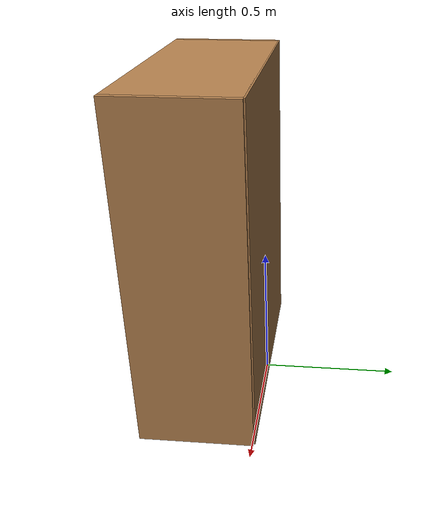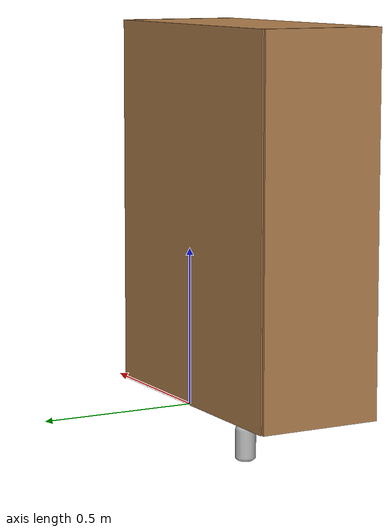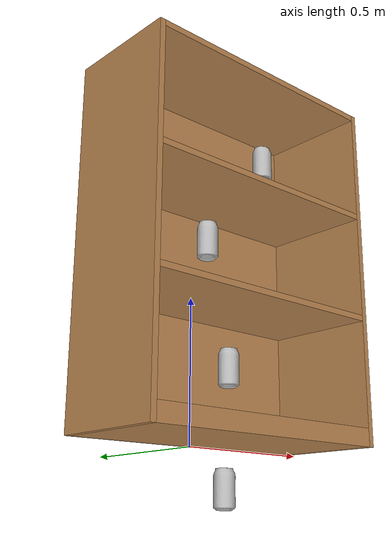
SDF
<?xml version='1.0'?>
<sdf version='1.6'>
  <model name='bookshelf_with_cans'>
    <model name='bookshelf'>
      <static>1</static>
      <link name='link'>
        <inertial>
          <mass>1</mass>
        </inertial>
        <collision name='back'>
          <pose frame=''>0 0.005 0.6 0 -0 0</pose>
          <geometry>
            <box>
              <size>0.9 0.01 1.2</size>
            </box>
          </geometry>
          <max_contacts>10</max_contacts>
          <surface>
            <contact>
              <ode/>
            </contact>
            <bounce/>
            <friction>
              <torsional>
                <ode/>
              </torsional>
              <ode/>
            </friction>
          </surface>
        </collision>
        <visual name='visual1'>
          <pose frame=''>0 0.005 0.6 0 -0 0</pose>
          <geometry>
            <box>
              <size>0.9 0.01 1.2</size>
            </box>
          </geometry>
          <material>
            <script>
              <uri>file://media/materials/scripts/gazebo.material</uri>
              <name>Gazebo/Wood</name>
            </script>
          </material>
        </visual>
        <collision name='left_side'>
          <pose frame=''>0.45 -0.195 0.6 0 -0 0</pose>
          <geometry>
            <box>
              <size>0.02 0.4 1.2</size>
            </box>
          </geometry>
          <max_contacts>10</max_contacts>
          <surface>
            <contact>
              <ode/>
            </contact>
            <bounce/>
            <friction>
              <torsional>
                <ode/>
              </torsional>
              <ode/>
            </friction>
          </surface>
        </collision>
        <visual name='visual2'>
          <pose frame=''>0.45 -0.195 0.6 0 -0 0</pose>
          <geometry>
            <box>
              <size>0.02 0.4 1.2</size>
            </box>
          </geometry>
          <material>
            <script>
              <uri>file://media/materials/scripts/gazebo.material</uri>
              <name>Gazebo/Wood</name>
            </script>
          </material>
        </visual>
        <collision name='right_side'>
          <pose frame=''>-0.45 -0.195 0.6 0 -0 0</pose>
          <geometry>
            <box>
              <size>0.02 0.4 1.2</size>
            </box>
          </geometry>
          <max_contacts>10</max_contacts>
          <surface>
            <contact>
              <ode/>
            </contact>
            <bounce/>
            <friction>
              <torsional>
                <ode/>
              </torsional>
              <ode/>
            </friction>
          </surface>
        </collision>
        <visual name='visual3'>
          <pose frame=''>-0.45 -0.195 0.6 0 -0 0</pose>
          <geometry>
            <box>
              <size>0.02 0.4 1.2</size>
            </box>
          </geometry>
          <material>
            <script>
              <uri>file://media/materials/scripts/gazebo.material</uri>
              <name>Gazebo/Wood</name>
            </script>
          </material>
        </visual>
        <collision name='bottom'>
          <pose frame=''>0 -0.195 0.03 0 -0 0</pose>
          <geometry>
            <box>
              <size>0.88 0.4 0.06</size>
            </box>
          </geometry>
          <max_contacts>10</max_contacts>
          <surface>
            <contact>
              <ode/>
            </contact>
            <bounce/>
            <friction>
              <torsional>
                <ode/>
              </torsional>
              <ode/>
            </friction>
          </surface>
        </collision>
        <visual name='visual4'>
          <pose frame=''>0 -0.195 0.03 0 -0 0</pose>
          <geometry>
            <box>
              <size>0.88 0.4 0.06</size>
            </box>
          </geometry>
          <material>
            <script>
              <uri>file://media/materials/scripts/gazebo.material</uri>
              <name>Gazebo/Wood</name>
            </script>
          </material>
        </visual>
        <collision name='top'>
          <pose frame=''>0 -0.195 1.19 0 -0 0</pose>
          <geometry>
            <box>
              <size>0.88 0.4 0.02</size>
            </box>
          </geometry>
          <max_contacts>10</max_contacts>
          <surface>
            <contact>
              <ode/>
            </contact>
            <bounce/>
            <friction>
              <torsional>
                <ode/>
              </torsional>
              <ode/>
            </friction>
          </surface>
        </collision>
        <visual name='visual5'>
          <pose frame=''>0 -0.195 1.19 0 -0 0</pose>
          <geometry>
            <box>
              <size>0.88 0.4 0.02</size>
            </box>
          </geometry>
          <material>
            <script>
              <uri>file://media/materials/scripts/gazebo.material</uri>
              <name>Gazebo/Wood</name>
            </script>
          </material>
        </visual>
        <collision name='low_shelf'>
          <pose frame=''>0 -0.195 0.43 0 -0 0</pose>
          <geometry>
            <box>
              <size>0.88 0.4 0.02</size>
            </box>
          </geometry>
          <max_contacts>10</max_contacts>
          <surface>
            <contact>
              <ode/>
            </contact>
            <bounce/>
            <friction>
              <torsional>
                <ode/>
              </torsional>
              <ode/>
            </friction>
          </surface>
        </collision>
        <visual name='visual6'>
          <pose frame=''>0 -0.195 0.43 0 -0 0</pose>
          <geometry>
            <box>
              <size>0.88 0.4 0.02</size>
            </box>
          </geometry>
          <material>
            <script>
              <uri>file://media/materials/scripts/gazebo.material</uri>
              <name>Gazebo/Wood</name>
            </script>
          </material>
        </visual>
        <collision name='high_shelf'>
          <pose frame=''>0 -0.195 0.8 0 -0 0</pose>
          <geometry>
            <box>
              <size>0.88 0.4 0.02</size>
            </box>
          </geometry>
          <max_contacts>10</max_contacts>
          <surface>
            <contact>
              <ode/>
            </contact>
            <bounce/>
            <friction>
              <torsional>
                <ode/>
              </torsional>
              <ode/>
            </friction>
          </surface>
        </collision>
        <visual name='visual7'>
          <pose frame=''>0 -0.195 0.8 0 -0 0</pose>
          <geometry>
            <box>
              <size>0.88 0.4 0.02</size>
            </box>
          </geometry>
          <material>
            <script>
              <uri>file://media/materials/scripts/gazebo.material</uri>
              <name>Gazebo/Wood</name>
            </script>
          </material>
        </visual>
        <self_collide>0</self_collide>
        <enable_wind>0</enable_wind>
        <kinematic>0</kinematic>
      </link>
      <pose frame=''>-0.010287 0 0 0 -0 0</pose>
    </model>
    <model name='coke_can_0'>
      <link name='link'>
        <inertial>
          <pose frame=''>-0.01 -0.012 0.15 0 -0 0</pose>
          <mass>0.39</mass>
          <inertia>
            <ixx>0.00058</ixx>
            <ixy>0</ixy>
            <ixz>0</ixz>
            <iyy>0.00058</iyy>
            <iyz>0</iyz>
            <izz>0.00019</izz>
          </inertia>
        </inertial>
        <collision name='collision'>
          <pose frame=''>0 0 -0.46 0 -0 0</pose>
          <geometry>
            <mesh>
              <uri>model://coke_can/meshes/coke_can.dae</uri>
            </mesh>
          </geometry>
          <surface>
            <friction>
              <ode>
                <mu>1</mu>
                <mu2>1</mu2>
              </ode>
              <torsional>
                <ode/>
              </torsional>
            </friction>
            <contact>
              <ode>
                <kp>1e+07</kp>
                <kd>1</kd>
                <min_depth>0.001</min_depth>
                <max_vel>0.1</max_vel>
              </ode>
            </contact>
            <bounce/>
          </surface>
          <max_contacts>10</max_contacts>
        </collision>
        <visual name='visual'>
          <pose frame=''>0 0 -0.46 0 -0 0</pose>
          <geometry>
            <mesh>
              <uri>model://coke_can/meshes/coke_can.dae</uri>
            </mesh>
          </geometry>
        </visual>
        <self_collide>0</self_collide>
        <enable_wind>0</enable_wind>
        <kinematic>0</kinematic>
      </link>
      <pose frame=''>-0.019007 -0.185097 0.074167 0 -0 0</pose>
    </model>
    <model name='coke_can_0_clone'>
      <link name='link'>
        <inertial>
          <pose frame=''>-0.01 -0.012 0.15 0 -0 0</pose>
          <mass>0.39</mass>
          <inertia>
            <ixx>0.00058</ixx>
            <ixy>0</ixy>
            <ixz>0</ixz>
            <iyy>0.00058</iyy>
            <iyz>0</iyz>
            <izz>0.00019</izz>
          </inertia>
        </inertial>
        <collision name='collision'>
          <pose frame=''>0 0 -0.46 0 -0 0</pose>
          <geometry>
            <mesh>
              <uri>model://coke_can/meshes/coke_can.dae</uri>
            </mesh>
          </geometry>
          <surface>
            <friction>
              <ode>
                <mu>1</mu>
                <mu2>1</mu2>
              </ode>
              <torsional>
                <ode/>
              </torsional>
            </friction>
            <contact>
              <ode>
                <kp>1e+07</kp>
                <kd>1</kd>
                <min_depth>0.001</min_depth>
                <max_vel>0.1</max_vel>
              </ode>
            </contact>
            <bounce/>
          </surface>
          <max_contacts>10</max_contacts>
        </collision>
        <visual name='visual'>
          <pose frame=''>0 0 -0.46 0 -0 0</pose>
          <geometry>
            <mesh>
              <uri>model://coke_can/meshes/coke_can.dae</uri>
            </mesh>
          </geometry>
        </visual>
        <self_collide>0</self_collide>
        <enable_wind>0</enable_wind>
        <kinematic>0</kinematic>
      </link>
      <pose frame=''>-0.005681 -0.192102 0.443192 0 -0 0</pose>
    </model>
    <model name='coke_can_0_clone_clone'>
      <link name='link'>
        <inertial>
          <pose frame=''>-0.01 -0.012 0.15 0 -0 0</pose>
          <mass>0.39</mass>
          <inertia>
            <ixx>0.00058</ixx>
            <ixy>0</ixy>
            <ixz>0</ixz>
            <iyy>0.00058</iyy>
            <iyz>0</iyz>
            <izz>0.00019</izz>
          </inertia>
        </inertial>
        <collision name='collision'>
          <pose frame=''>0 0 -0.46 0 -0 0</pose>
          <geometry>
            <mesh>
              <uri>model://coke_can/meshes/coke_can.dae</uri>
            </mesh>
          </geometry>
          <surface>
            <friction>
              <ode>
                <mu>1</mu>
                <mu2>1</mu2>
              </ode>
              <torsional>
                <ode/>
              </torsional>
            </friction>
            <contact>
              <ode>
                <kp>1e+07</kp>
                <kd>1</kd>
                <min_depth>0.001</min_depth>
                <max_vel>0.1</max_vel>
              </ode>
            </contact>
            <bounce/>
          </surface>
          <max_contacts>10</max_contacts>
        </collision>
        <visual name='visual'>
          <pose frame=''>0 0 -0.46 0 -0 0</pose>
          <geometry>
            <mesh>
              <uri>model://coke_can/meshes/coke_can.dae</uri>
            </mesh>
          </geometry>
        </visual>
        <self_collide>0</self_collide>
        <enable_wind>0</enable_wind>
        <kinematic>0</kinematic>
      </link>
      <pose frame=''>-0.124775 -0.222944 0.831479 0 -0 0</pose>
    </model>
    <model name='coke_can_0_clone_clone_clone'>
      <link name='link'>
        <inertial>
          <pose frame=''>-0.01 -0.012 0.15 0 -0 0</pose>
          <mass>0.39</mass>
          <inertia>
            <ixx>0.00058</ixx>
            <ixy>0</ixy>
            <ixz>0</ixz>
            <iyy>0.00058</iyy>
            <iyz>0</iyz>
            <izz>0.00019</izz>
          </inertia>
        </inertial>
        <collision name='collision'>
          <pose frame=''>0 0 -0.46 0 -0 0</pose>
          <geometry>
            <mesh>
              <uri>model://coke_can/meshes/coke_can.dae</uri>
            </mesh>
          </geometry>
          <surface>
            <friction>
              <ode>
                <mu>1</mu>
                <mu2>1</mu2>
              </ode>
              <torsional>
                <ode/>
              </torsional>
            </friction>
            <contact>
              <ode>
                <kp>1e+07</kp>
                <kd>1</kd>
                <min_depth>0.001</min_depth>
                <max_vel>0.1</max_vel>
              </ode>
            </contact>
            <bounce/>
          </surface>
          <max_contacts>10</max_contacts>
        </collision>
        <visual name='visual'>
          <pose frame=''>0 0 -0.46 0 -0 0</pose>
          <geometry>
            <mesh>
              <uri>model://coke_can/meshes/coke_can.dae</uri>
            </mesh>
          </geometry>
        </visual>
        <self_collide>0</self_collide>
        <enable_wind>0</enable_wind>
        <kinematic>0</kinematic>
      </link>
      <pose frame=''>0.155586 -0.197387 1.19394 0 -0 0</pose>
    </model>
    <static>0</static>
    <allow_auto_disable>1</allow_auto_disable>
  </model>
</sdf>
